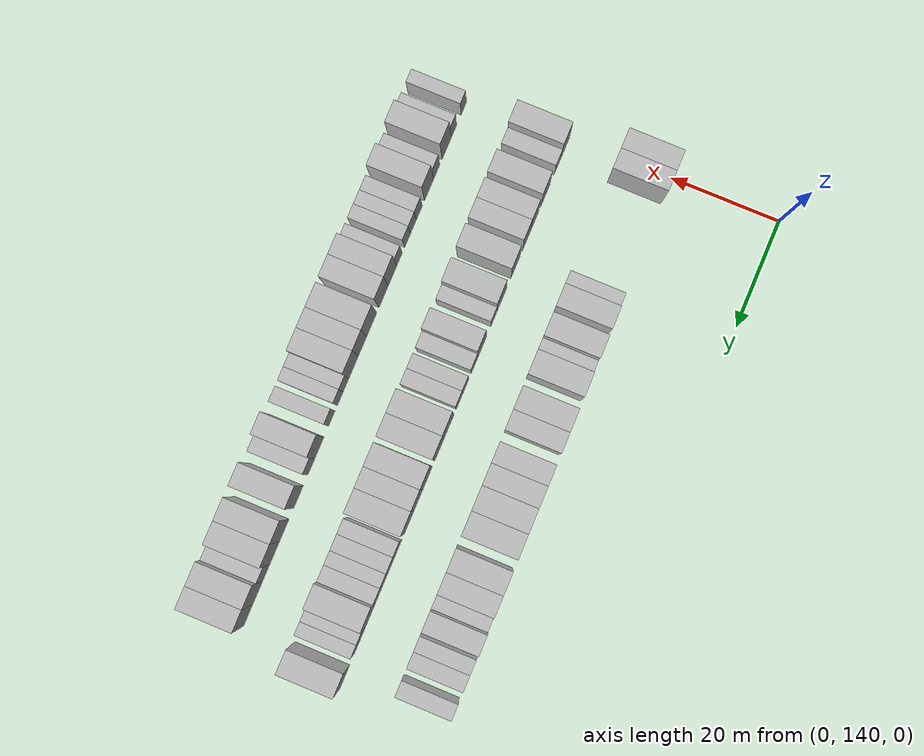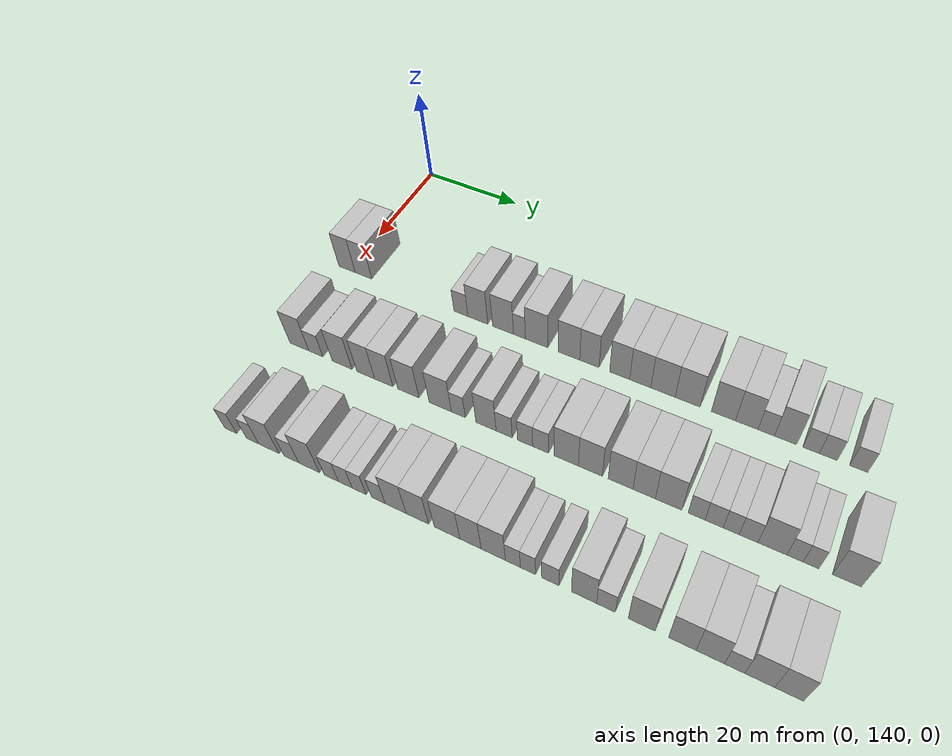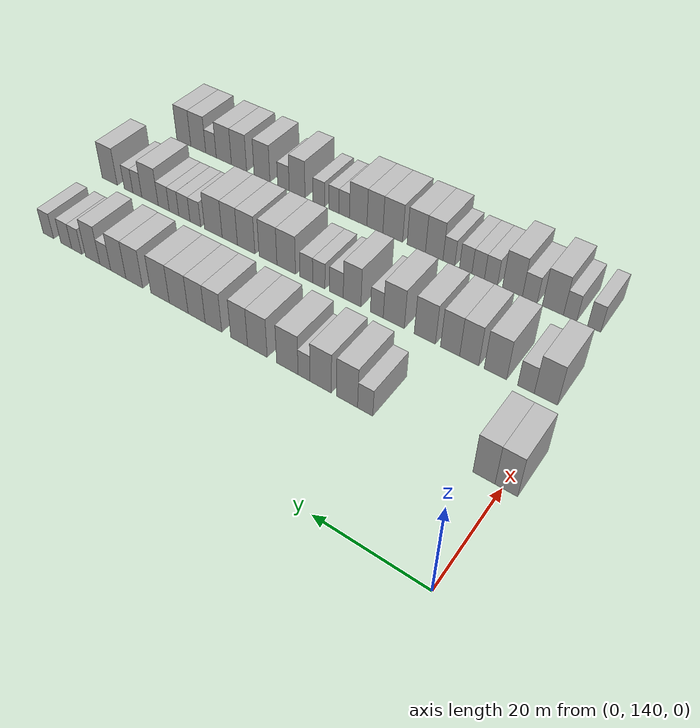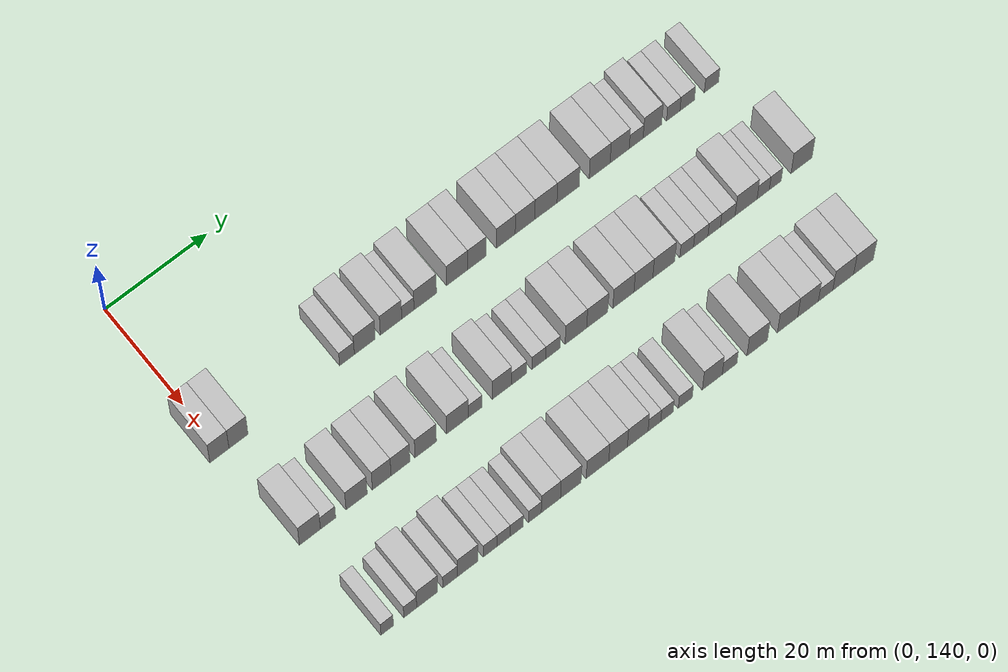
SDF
<sdf version="1.6">
 <world name="default">
  <model name="building_96">
   <static>1</static>
   <pose>25.0000 139.3659 0 0.000000 0.000000 0.000000</pose>
   <link name="link">
    <pose>0 0 4.50 0 0 0</pose>
    <collision name="collision"><geometry><box><size>10.0000 3.7204 9.0000</size></box></geometry></collision>
    <visual name="visual">
     <cast_shadows>0</cast_shadows>
     <geometry><box><size>10.0000 3.7204 9.0000</size></box></geometry>
     <material>
      <script>
       <uri>model://HANNAS_wall/materials/scripts</uri>
       <uri>model://HANNAS_wall/materials/textures</uri>
       <name>vrc/HANNAS_wall</name>
      </script>
     </material>
    </visual>
   </link>
  </model>
  <model name="building_97">
   <static>1</static>
   <pose>25.0000 143.0811 0 0.000000 0.000000 0.000000</pose>
   <link name="link">
    <pose>0 0 4.50 0 0 0</pose>
    <collision name="collision"><geometry><box><size>10.0000 3.7100 9.0000</size></box></geometry></collision>
    <visual name="visual">
     <cast_shadows>0</cast_shadows>
     <geometry><box><size>10.0000 3.7100 9.0000</size></box></geometry>
     <material>
      <script>
       <uri>model://HANNAS_wall/materials/scripts</uri>
       <uri>model://HANNAS_wall/materials/textures</uri>
       <name>vrc/HANNAS_wall</name>
      </script>
     </material>
    </visual>
   </link>
  </model>
  <model name="building_98">
   <static>1</static>
   <pose>25.0000 164.2825 0 0.000000 0.000000 0.000000</pose>
   <link name="link">
    <pose>0 0 3.00 0 0 0</pose>
    <collision name="collision"><geometry><box><size>10.0000 2.8976 6.0000</size></box></geometry></collision>
    <visual name="visual">
     <cast_shadows>0</cast_shadows>
     <geometry><box><size>10.0000 2.8976 6.0000</size></box></geometry>
     <material>
      <script>
       <uri>model://HANNAS_wall/materials/scripts</uri>
       <uri>model://HANNAS_wall/materials/textures</uri>
       <name>vrc/HANNAS_wall</name>
      </script>
     </material>
    </visual>
   </link>
  </model>
  <model name="building_99">
   <static>1</static>
   <pose>25.0000 167.7879 0 0.000000 0.000000 0.000000</pose>
   <link name="link">
    <pose>0 0 4.50 0 0 0</pose>
    <collision name="collision"><geometry><box><size>10.0000 4.1133 9.0000</size></box></geometry></collision>
    <visual name="visual">
     <cast_shadows>0</cast_shadows>
     <geometry><box><size>10.0000 4.1133 9.0000</size></box></geometry>
     <material>
      <script>
       <uri>model://HANNAS_wall/materials/scripts</uri>
       <uri>model://HANNAS_wall/materials/textures</uri>
       <name>vrc/HANNAS_wall</name>
      </script>
     </material>
    </visual>
   </link>
  </model>
  <model name="building_100">
   <static>1</static>
   <pose>25.0000 172.9666 0 0.000000 0.000000 0.000000</pose>
   <link name="link">
    <pose>0 0 4.50 0 0 0</pose>
    <collision name="collision"><geometry><box><size>10.0000 4.2440 9.0000</size></box></geometry></collision>
    <visual name="visual">
     <cast_shadows>0</cast_shadows>
     <geometry><box><size>10.0000 4.2440 9.0000</size></box></geometry>
     <material>
      <script>
       <uri>model://HANNAS_wall/materials/scripts</uri>
       <uri>model://HANNAS_wall/materials/textures</uri>
       <name>vrc/HANNAS_wall</name>
      </script>
     </material>
    </visual>
   </link>
  </model>
  <model name="building_101">
   <static>1</static>
   <pose>25.0000 176.2978 0 0.000000 0.000000 0.000000</pose>
   <link name="link">
    <pose>0 0 3.00 0 0 0</pose>
    <collision name="collision"><geometry><box><size>10.0000 2.4184 6.0000</size></box></geometry></collision>
    <visual name="visual">
     <cast_shadows>0</cast_shadows>
     <geometry><box><size>10.0000 2.4184 6.0000</size></box></geometry>
     <material>
      <script>
       <uri>model://HANNAS_wall/materials/scripts</uri>
       <uri>model://HANNAS_wall/materials/textures</uri>
       <name>vrc/HANNAS_wall</name>
      </script>
     </material>
    </visual>
   </link>
  </model>
  <model name="building_102">
   <static>1</static>
   <pose>25.0000 179.7274 0 0.000000 0.000000 0.000000</pose>
   <link name="link">
    <pose>0 0 4.50 0 0 0</pose>
    <collision name="collision"><geometry><box><size>10.0000 4.4408 9.0000</size></box></geometry></collision>
    <visual name="visual">
     <cast_shadows>0</cast_shadows>
     <geometry><box><size>10.0000 4.4408 9.0000</size></box></geometry>
     <material>
      <script>
       <uri>model://HANNAS_wall/materials/scripts</uri>
       <uri>model://HANNAS_wall/materials/textures</uri>
       <name>vrc/HANNAS_wall</name>
      </script>
     </material>
    </visual>
   </link>
  </model>
  <model name="building_103">
   <static>1</static>
   <pose>25.0000 186.0563 0 0.000000 0.000000 0.000000</pose>
   <link name="link">
    <pose>0 0 4.50 0 0 0</pose>
    <collision name="collision"><geometry><box><size>10.0000 4.2172 9.0000</size></box></geometry></collision>
    <visual name="visual">
     <cast_shadows>0</cast_shadows>
     <geometry><box><size>10.0000 4.2172 9.0000</size></box></geometry>
     <material>
      <script>
       <uri>model://HANNAS_wall/materials/scripts</uri>
       <uri>model://HANNAS_wall/materials/textures</uri>
       <name>vrc/HANNAS_wall</name>
      </script>
     </material>
    </visual>
   </link>
  </model>
  <model name="building_104">
   <static>1</static>
   <pose>25.0000 190.0072 0 0.000000 0.000000 0.000000</pose>
   <link name="link">
    <pose>0 0 4.50 0 0 0</pose>
    <collision name="collision"><geometry><box><size>10.0000 3.6845 9.0000</size></box></geometry></collision>
    <visual name="visual">
     <cast_shadows>0</cast_shadows>
     <geometry><box><size>10.0000 3.6845 9.0000</size></box></geometry>
     <material>
      <script>
       <uri>model://HANNAS_wall/materials/scripts</uri>
       <uri>model://HANNAS_wall/materials/textures</uri>
       <name>vrc/HANNAS_wall</name>
      </script>
     </material>
    </visual>
   </link>
  </model>
  <model name="building_105">
   <static>1</static>
   <pose>25.0000 195.7263 0 0.000000 0.000000 0.000000</pose>
   <link name="link">
    <pose>0 0 4.50 0 0 0</pose>
    <collision name="collision"><geometry><box><size>10.0000 3.7537 9.0000</size></box></geometry></collision>
    <visual name="visual">
     <cast_shadows>0</cast_shadows>
     <geometry><box><size>10.0000 3.7537 9.0000</size></box></geometry>
     <material>
      <script>
       <uri>model://HANNAS_wall/materials/scripts</uri>
       <uri>model://HANNAS_wall/materials/textures</uri>
       <name>vrc/HANNAS_wall</name>
      </script>
     </material>
    </visual>
   </link>
  </model>
  <model name="building_106">
   <static>1</static>
   <pose>25.0000 199.5584 0 0.000000 0.000000 0.000000</pose>
   <link name="link">
    <pose>0 0 4.50 0 0 0</pose>
    <collision name="collision"><geometry><box><size>10.0000 3.9105 9.0000</size></box></geometry></collision>
    <visual name="visual">
     <cast_shadows>0</cast_shadows>
     <geometry><box><size>10.0000 3.9105 9.0000</size></box></geometry>
     <material>
      <script>
       <uri>model://HANNAS_wall/materials/scripts</uri>
       <uri>model://HANNAS_wall/materials/textures</uri>
       <name>vrc/HANNAS_wall</name>
      </script>
     </material>
    </visual>
   </link>
  </model>
  <model name="building_107">
   <static>1</static>
   <pose>25.0000 203.7398 0 0.000000 0.000000 0.000000</pose>
   <link name="link">
    <pose>0 0 4.50 0 0 0</pose>
    <collision name="collision"><geometry><box><size>10.0000 4.4525 9.0000</size></box></geometry></collision>
    <visual name="visual">
     <cast_shadows>0</cast_shadows>
     <geometry><box><size>10.0000 4.4525 9.0000</size></box></geometry>
     <material>
      <script>
       <uri>model://HANNAS_wall/materials/scripts</uri>
       <uri>model://HANNAS_wall/materials/textures</uri>
       <name>vrc/HANNAS_wall</name>
      </script>
     </material>
    </visual>
   </link>
  </model>
  <model name="building_108">
   <static>1</static>
   <pose>25.0000 208.1927 0 0.000000 0.000000 0.000000</pose>
   <link name="link">
    <pose>0 0 4.50 0 0 0</pose>
    <collision name="collision"><geometry><box><size>10.0000 4.4531 9.0000</size></box></geometry></collision>
    <visual name="visual">
     <cast_shadows>0</cast_shadows>
     <geometry><box><size>10.0000 4.4531 9.0000</size></box></geometry>
     <material>
      <script>
       <uri>model://HANNAS_wall/materials/scripts</uri>
       <uri>model://HANNAS_wall/materials/textures</uri>
       <name>vrc/HANNAS_wall</name>
      </script>
     </material>
    </visual>
   </link>
  </model>
  <model name="building_109">
   <static>1</static>
   <pose>25.0000 214.5232 0 0.000000 0.000000 0.000000</pose>
   <link name="link">
    <pose>0 0 4.50 0 0 0</pose>
    <collision name="collision"><geometry><box><size>10.0000 4.2079 9.0000</size></box></geometry></collision>
    <visual name="visual">
     <cast_shadows>0</cast_shadows>
     <geometry><box><size>10.0000 4.2079 9.0000</size></box></geometry>
     <material>
      <script>
       <uri>model://HANNAS_wall/materials/scripts</uri>
       <uri>model://HANNAS_wall/materials/textures</uri>
       <name>vrc/HANNAS_wall</name>
      </script>
     </material>
    </visual>
   </link>
  </model>
  <model name="building_110">
   <static>1</static>
   <pose>25.0000 218.5569 0 0.000000 0.000000 0.000000</pose>
   <link name="link">
    <pose>0 0 4.50 0 0 0</pose>
    <collision name="collision"><geometry><box><size>10.0000 3.8597 9.0000</size></box></geometry></collision>
    <visual name="visual">
     <cast_shadows>0</cast_shadows>
     <geometry><box><size>10.0000 3.8597 9.0000</size></box></geometry>
     <material>
      <script>
       <uri>model://HANNAS_wall/materials/scripts</uri>
       <uri>model://HANNAS_wall/materials/textures</uri>
       <name>vrc/HANNAS_wall</name>
      </script>
     </material>
    </visual>
   </link>
  </model>
  <model name="building_111">
   <static>1</static>
   <pose>25.0000 221.8860 0 0.000000 0.000000 0.000000</pose>
   <link name="link">
    <pose>0 0 3.00 0 0 0</pose>
    <collision name="collision"><geometry><box><size>10.0000 2.7984 6.0000</size></box></geometry></collision>
    <visual name="visual">
     <cast_shadows>0</cast_shadows>
     <geometry><box><size>10.0000 2.7984 6.0000</size></box></geometry>
     <material>
      <script>
       <uri>model://HANNAS_wall/materials/scripts</uri>
       <uri>model://HANNAS_wall/materials/textures</uri>
       <name>vrc/HANNAS_wall</name>
      </script>
     </material>
    </visual>
   </link>
  </model>
  <model name="building_112">
   <static>1</static>
   <pose>25.0000 225.1602 0 0.000000 0.000000 0.000000</pose>
   <link name="link">
    <pose>0 0 4.50 0 0 0</pose>
    <collision name="collision"><geometry><box><size>10.0000 3.7499 9.0000</size></box></geometry></collision>
    <visual name="visual">
     <cast_shadows>0</cast_shadows>
     <geometry><box><size>10.0000 3.7499 9.0000</size></box></geometry>
     <material>
      <script>
       <uri>model://HANNAS_wall/materials/scripts</uri>
       <uri>model://HANNAS_wall/materials/textures</uri>
       <name>vrc/HANNAS_wall</name>
      </script>
     </material>
    </visual>
   </link>
  </model>
  <model name="building_113">
   <static>1</static>
   <pose>25.0000 229.3922 0 0.000000 0.000000 0.000000</pose>
   <link name="link">
    <pose>0 0 3.00 0 0 0</pose>
    <collision name="collision"><geometry><box><size>10.0000 2.7141 6.0000</size></box></geometry></collision>
    <visual name="visual">
     <cast_shadows>0</cast_shadows>
     <geometry><box><size>10.0000 2.7141 6.0000</size></box></geometry>
     <material>
      <script>
       <uri>model://HANNAS_wall/materials/scripts</uri>
       <uri>model://HANNAS_wall/materials/textures</uri>
       <name>vrc/HANNAS_wall</name>
      </script>
     </material>
    </visual>
   </link>
  </model>
  <model name="building_114">
   <static>1</static>
   <pose>25.0000 232.2271 0 0.000000 0.000000 0.000000</pose>
   <link name="link">
    <pose>0 0 3.00 0 0 0</pose>
    <collision name="collision"><geometry><box><size>10.0000 2.9558 6.0000</size></box></geometry></collision>
    <visual name="visual">
     <cast_shadows>0</cast_shadows>
     <geometry><box><size>10.0000 2.9558 6.0000</size></box></geometry>
     <material>
      <script>
       <uri>model://HANNAS_wall/materials/scripts</uri>
       <uri>model://HANNAS_wall/materials/textures</uri>
       <name>vrc/HANNAS_wall</name>
      </script>
     </material>
    </visual>
   </link>
  </model>
  <model name="building_115">
   <static>1</static>
   <pose>25.0000 237.1587 0 0.000000 0.000000 0.000000</pose>
   <link name="link">
    <pose>0 0 3.00 0 0 0</pose>
    <collision name="collision"><geometry><box><size>10.0000 2.9074 6.0000</size></box></geometry></collision>
    <visual name="visual">
     <cast_shadows>0</cast_shadows>
     <geometry><box><size>10.0000 2.9074 6.0000</size></box></geometry>
     <material>
      <script>
       <uri>model://HANNAS_wall/materials/scripts</uri>
       <uri>model://HANNAS_wall/materials/textures</uri>
       <name>vrc/HANNAS_wall</name>
      </script>
     </material>
    </visual>
   </link>
  </model>
  <model name="building_213">
   <static>1</static>
   <pose>44.0000 142.2587 0 0.000000 0.000000 0.000000</pose>
   <link name="link">
    <pose>0 0 4.50 0 0 0</pose>
    <collision name="collision"><geometry><box><size>10.0000 4.0857 9.0000</size></box></geometry></collision>
    <visual name="visual">
     <cast_shadows>0</cast_shadows>
     <geometry><box><size>10.0000 4.0857 9.0000</size></box></geometry>
     <material>
      <script>
       <uri>model://HANNAS_wall/materials/scripts</uri>
       <uri>model://HANNAS_wall/materials/textures</uri>
       <name>vrc/HANNAS_wall</name>
      </script>
     </material>
    </visual>
   </link>
  </model>
  <model name="building_214">
   <static>1</static>
   <pose>44.0000 145.7861 0 0.000000 0.000000 0.000000</pose>
   <link name="link">
    <pose>0 0 3.00 0 0 0</pose>
    <collision name="collision"><geometry><box><size>10.0000 2.9692 6.0000</size></box></geometry></collision>
    <visual name="visual">
     <cast_shadows>0</cast_shadows>
     <geometry><box><size>10.0000 2.9692 6.0000</size></box></geometry>
     <material>
      <script>
       <uri>model://HANNAS_wall/materials/scripts</uri>
       <uri>model://HANNAS_wall/materials/textures</uri>
       <name>vrc/HANNAS_wall</name>
      </script>
     </material>
    </visual>
   </link>
  </model>
  <model name="building_215">
   <static>1</static>
   <pose>44.0000 151.3429 0 0.000000 0.000000 0.000000</pose>
   <link name="link">
    <pose>0 0 4.50 0 0 0</pose>
    <collision name="collision"><geometry><box><size>10.0000 4.1444 9.0000</size></box></geometry></collision>
    <visual name="visual">
     <cast_shadows>0</cast_shadows>
     <geometry><box><size>10.0000 4.1444 9.0000</size></box></geometry>
     <material>
      <script>
       <uri>model://HANNAS_wall/materials/scripts</uri>
       <uri>model://HANNAS_wall/materials/textures</uri>
       <name>vrc/HANNAS_wall</name>
      </script>
     </material>
    </visual>
   </link>
  </model>
  <model name="building_216">
   <static>1</static>
   <pose>44.0000 156.2304 0 0.000000 0.000000 0.000000</pose>
   <link name="link">
    <pose>0 0 4.50 0 0 0</pose>
    <collision name="collision"><geometry><box><size>10.0000 3.6306 9.0000</size></box></geometry></collision>
    <visual name="visual">
     <cast_shadows>0</cast_shadows>
     <geometry><box><size>10.0000 3.6306 9.0000</size></box></geometry>
     <material>
      <script>
       <uri>model://HANNAS_wall/materials/scripts</uri>
       <uri>model://HANNAS_wall/materials/textures</uri>
       <name>vrc/HANNAS_wall</name>
      </script>
     </material>
    </visual>
   </link>
  </model>
  <model name="building_217">
   <static>1</static>
   <pose>44.0000 159.8955 0 0.000000 0.000000 0.000000</pose>
   <link name="link">
    <pose>0 0 4.50 0 0 0</pose>
    <collision name="collision"><geometry><box><size>10.0000 3.6997 9.0000</size></box></geometry></collision>
    <visual name="visual">
     <cast_shadows>0</cast_shadows>
     <geometry><box><size>10.0000 3.6997 9.0000</size></box></geometry>
     <material>
      <script>
       <uri>model://HANNAS_wall/materials/scripts</uri>
       <uri>model://HANNAS_wall/materials/textures</uri>
       <name>vrc/HANNAS_wall</name>
      </script>
     </material>
    </visual>
   </link>
  </model>
  <model name="building_218">
   <static>1</static>
   <pose>44.0000 164.8458 0 0.000000 0.000000 0.000000</pose>
   <link name="link">
    <pose>0 0 4.50 0 0 0</pose>
    <collision name="collision"><geometry><box><size>10.0000 4.2008 9.0000</size></box></geometry></collision>
    <visual name="visual">
     <cast_shadows>0</cast_shadows>
     <geometry><box><size>10.0000 4.2008 9.0000</size></box></geometry>
     <material>
      <script>
       <uri>model://HANNAS_wall/materials/scripts</uri>
       <uri>model://HANNAS_wall/materials/textures</uri>
       <name>vrc/HANNAS_wall</name>
      </script>
     </material>
    </visual>
   </link>
  </model>
  <model name="building_219">
   <static>1</static>
   <pose>44.0000 171.1092 0 0.000000 0.000000 0.000000</pose>
   <link name="link">
    <pose>0 0 4.50 0 0 0</pose>
    <collision name="collision"><geometry><box><size>10.0000 4.3261 9.0000</size></box></geometry></collision>
    <visual name="visual">
     <cast_shadows>0</cast_shadows>
     <geometry><box><size>10.0000 4.3261 9.0000</size></box></geometry>
     <material>
      <script>
       <uri>model://HANNAS_wall/materials/scripts</uri>
       <uri>model://HANNAS_wall/materials/textures</uri>
       <name>vrc/HANNAS_wall</name>
      </script>
     </material>
    </visual>
   </link>
  </model>
  <model name="building_220">
   <static>1</static>
   <pose>44.0000 174.6132 0 0.000000 0.000000 0.000000</pose>
   <link name="link">
    <pose>0 0 3.00 0 0 0</pose>
    <collision name="collision"><geometry><box><size>10.0000 2.6818 6.0000</size></box></geometry></collision>
    <visual name="visual">
     <cast_shadows>0</cast_shadows>
     <geometry><box><size>10.0000 2.6818 6.0000</size></box></geometry>
     <material>
      <script>
       <uri>model://HANNAS_wall/materials/scripts</uri>
       <uri>model://HANNAS_wall/materials/textures</uri>
       <name>vrc/HANNAS_wall</name>
      </script>
     </material>
    </visual>
   </link>
  </model>
  <model name="building_221">
   <static>1</static>
   <pose>44.0000 179.8510 0 0.000000 0.000000 0.000000</pose>
   <link name="link">
    <pose>0 0 4.50 0 0 0</pose>
    <collision name="collision"><geometry><box><size>10.0000 3.7938 9.0000</size></box></geometry></collision>
    <visual name="visual">
     <cast_shadows>0</cast_shadows>
     <geometry><box><size>10.0000 3.7938 9.0000</size></box></geometry>
     <material>
      <script>
       <uri>model://HANNAS_wall/materials/scripts</uri>
       <uri>model://HANNAS_wall/materials/textures</uri>
       <name>vrc/HANNAS_wall</name>
      </script>
     </material>
    </visual>
   </link>
  </model>
  <model name="building_222">
   <static>1</static>
   <pose>44.0000 183.2450 0 0.000000 0.000000 0.000000</pose>
   <link name="link">
    <pose>0 0 3.00 0 0 0</pose>
    <collision name="collision"><geometry><box><size>10.0000 2.9941 6.0000</size></box></geometry></collision>
    <visual name="visual">
     <cast_shadows>0</cast_shadows>
     <geometry><box><size>10.0000 2.9941 6.0000</size></box></geometry>
     <material>
      <script>
       <uri>model://HANNAS_wall/materials/scripts</uri>
       <uri>model://HANNAS_wall/materials/textures</uri>
       <name>vrc/HANNAS_wall</name>
      </script>
     </material>
    </visual>
   </link>
  </model>
  <model name="building_223">
   <static>1</static>
   <pose>44.0000 187.1088 0 0.000000 0.000000 0.000000</pose>
   <link name="link">
    <pose>0 0 3.00 0 0 0</pose>
    <collision name="collision"><geometry><box><size>10.0000 2.7335 6.0000</size></box></geometry></collision>
    <visual name="visual">
     <cast_shadows>0</cast_shadows>
     <geometry><box><size>10.0000 2.7335 6.0000</size></box></geometry>
     <material>
      <script>
       <uri>model://HANNAS_wall/materials/scripts</uri>
       <uri>model://HANNAS_wall/materials/textures</uri>
       <name>vrc/HANNAS_wall</name>
      </script>
     </material>
    </visual>
   </link>
  </model>
  <model name="building_224">
   <static>1</static>
   <pose>44.0000 189.9155 0 0.000000 0.000000 0.000000</pose>
   <link name="link">
    <pose>0 0 3.00 0 0 0</pose>
    <collision name="collision"><geometry><box><size>10.0000 2.8799 6.0000</size></box></geometry></collision>
    <visual name="visual">
     <cast_shadows>0</cast_shadows>
     <geometry><box><size>10.0000 2.8799 6.0000</size></box></geometry>
     <material>
      <script>
       <uri>model://HANNAS_wall/materials/scripts</uri>
       <uri>model://HANNAS_wall/materials/textures</uri>
       <name>vrc/HANNAS_wall</name>
      </script>
     </material>
    </visual>
   </link>
  </model>
  <model name="building_225">
   <static>1</static>
   <pose>44.0000 194.5057 0 0.000000 0.000000 0.000000</pose>
   <link name="link">
    <pose>0 0 4.50 0 0 0</pose>
    <collision name="collision"><geometry><box><size>10.0000 4.3005 9.0000</size></box></geometry></collision>
    <visual name="visual">
     <cast_shadows>0</cast_shadows>
     <geometry><box><size>10.0000 4.3005 9.0000</size></box></geometry>
     <material>
      <script>
       <uri>model://HANNAS_wall/materials/scripts</uri>
       <uri>model://HANNAS_wall/materials/textures</uri>
       <name>vrc/HANNAS_wall</name>
      </script>
     </material>
    </visual>
   </link>
  </model>
  <model name="building_226">
   <static>1</static>
   <pose>44.0000 198.7559 0 0.000000 0.000000 0.000000</pose>
   <link name="link">
    <pose>0 0 4.50 0 0 0</pose>
    <collision name="collision"><geometry><box><size>10.0000 4.1998 9.0000</size></box></geometry></collision>
    <visual name="visual">
     <cast_shadows>0</cast_shadows>
     <geometry><box><size>10.0000 4.1998 9.0000</size></box></geometry>
     <material>
      <script>
       <uri>model://HANNAS_wall/materials/scripts</uri>
       <uri>model://HANNAS_wall/materials/textures</uri>
       <name>vrc/HANNAS_wall</name>
      </script>
     </material>
    </visual>
   </link>
  </model>
  <model name="building_227">
   <static>1</static>
   <pose>44.0000 203.9703 0 0.000000 0.000000 0.000000</pose>
   <link name="link">
    <pose>0 0 4.50 0 0 0</pose>
    <collision name="collision"><geometry><box><size>10.0000 4.2291 9.0000</size></box></geometry></collision>
    <visual name="visual">
     <cast_shadows>0</cast_shadows>
     <geometry><box><size>10.0000 4.2291 9.0000</size></box></geometry>
     <material>
      <script>
       <uri>model://HANNAS_wall/materials/scripts</uri>
       <uri>model://HANNAS_wall/materials/textures</uri>
       <name>vrc/HANNAS_wall</name>
      </script>
     </material>
    </visual>
   </link>
  </model>
  <model name="building_228">
   <static>1</static>
   <pose>44.0000 207.9721 0 0.000000 0.000000 0.000000</pose>
   <link name="link">
    <pose>0 0 4.50 0 0 0</pose>
    <collision name="collision"><geometry><box><size>10.0000 3.7744 9.0000</size></box></geometry></collision>
    <visual name="visual">
     <cast_shadows>0</cast_shadows>
     <geometry><box><size>10.0000 3.7744 9.0000</size></box></geometry>
     <material>
      <script>
       <uri>model://HANNAS_wall/materials/scripts</uri>
       <uri>model://HANNAS_wall/materials/textures</uri>
       <name>vrc/HANNAS_wall</name>
      </script>
     </material>
    </visual>
   </link>
  </model>
  <model name="building_229">
   <static>1</static>
   <pose>44.0000 212.0667 0 0.000000 0.000000 0.000000</pose>
   <link name="link">
    <pose>0 0 4.50 0 0 0</pose>
    <collision name="collision"><geometry><box><size>10.0000 4.4148 9.0000</size></box></geometry></collision>
    <visual name="visual">
     <cast_shadows>0</cast_shadows>
     <geometry><box><size>10.0000 4.4148 9.0000</size></box></geometry>
     <material>
      <script>
       <uri>model://HANNAS_wall/materials/scripts</uri>
       <uri>model://HANNAS_wall/materials/textures</uri>
       <name>vrc/HANNAS_wall</name>
      </script>
     </material>
    </visual>
   </link>
  </model>
  <model name="building_230">
   <static>1</static>
   <pose>44.0000 216.6482 0 0.000000 0.000000 0.000000</pose>
   <link name="link">
    <pose>0 0 3.00 0 0 0</pose>
    <collision name="collision"><geometry><box><size>10.0000 2.7481 6.0000</size></box></geometry></collision>
    <visual name="visual">
     <cast_shadows>0</cast_shadows>
     <geometry><box><size>10.0000 2.7481 6.0000</size></box></geometry>
     <material>
      <script>
       <uri>model://HANNAS_wall/materials/scripts</uri>
       <uri>model://HANNAS_wall/materials/textures</uri>
       <name>vrc/HANNAS_wall</name>
      </script>
     </material>
    </visual>
   </link>
  </model>
  <model name="building_231">
   <static>1</static>
   <pose>44.0000 219.4779 0 0.000000 0.000000 0.000000</pose>
   <link name="link">
    <pose>0 0 3.00 0 0 0</pose>
    <collision name="collision"><geometry><box><size>10.0000 2.9113 6.0000</size></box></geometry></collision>
    <visual name="visual">
     <cast_shadows>0</cast_shadows>
     <geometry><box><size>10.0000 2.9113 6.0000</size></box></geometry>
     <material>
      <script>
       <uri>model://HANNAS_wall/materials/scripts</uri>
       <uri>model://HANNAS_wall/materials/textures</uri>
       <name>vrc/HANNAS_wall</name>
      </script>
     </material>
    </visual>
   </link>
  </model>
  <model name="building_232">
   <static>1</static>
   <pose>44.0000 222.1958 0 0.000000 0.000000 0.000000</pose>
   <link name="link">
    <pose>0 0 3.00 0 0 0</pose>
    <collision name="collision"><geometry><box><size>10.0000 2.5244 6.0000</size></box></geometry></collision>
    <visual name="visual">
     <cast_shadows>0</cast_shadows>
     <geometry><box><size>10.0000 2.5244 6.0000</size></box></geometry>
     <material>
      <script>
       <uri>model://HANNAS_wall/materials/scripts</uri>
       <uri>model://HANNAS_wall/materials/textures</uri>
       <name>vrc/HANNAS_wall</name>
      </script>
     </material>
    </visual>
   </link>
  </model>
  <model name="building_233">
   <static>1</static>
   <pose>44.0000 224.9395 0 0.000000 0.000000 0.000000</pose>
   <link name="link">
    <pose>0 0 3.00 0 0 0</pose>
    <collision name="collision"><geometry><box><size>10.0000 2.9630 6.0000</size></box></geometry></collision>
    <visual name="visual">
     <cast_shadows>0</cast_shadows>
     <geometry><box><size>10.0000 2.9630 6.0000</size></box></geometry>
     <material>
      <script>
       <uri>model://HANNAS_wall/materials/scripts</uri>
       <uri>model://HANNAS_wall/materials/textures</uri>
       <name>vrc/HANNAS_wall</name>
      </script>
     </material>
    </visual>
   </link>
  </model>
  <model name="building_234">
   <static>1</static>
   <pose>44.0000 228.6480 0 0.000000 0.000000 0.000000</pose>
   <link name="link">
    <pose>0 0 4.50 0 0 0</pose>
    <collision name="collision"><geometry><box><size>10.0000 4.4540 9.0000</size></box></geometry></collision>
    <visual name="visual">
     <cast_shadows>0</cast_shadows>
     <geometry><box><size>10.0000 4.4540 9.0000</size></box></geometry>
     <material>
      <script>
       <uri>model://HANNAS_wall/materials/scripts</uri>
       <uri>model://HANNAS_wall/materials/textures</uri>
       <name>vrc/HANNAS_wall</name>
      </script>
     </material>
    </visual>
   </link>
  </model>
  <model name="building_235">
   <static>1</static>
   <pose>44.0000 232.1119 0 0.000000 0.000000 0.000000</pose>
   <link name="link">
    <pose>0 0 3.00 0 0 0</pose>
    <collision name="collision"><geometry><box><size>10.0000 2.4738 6.0000</size></box></geometry></collision>
    <visual name="visual">
     <cast_shadows>0</cast_shadows>
     <geometry><box><size>10.0000 2.4738 6.0000</size></box></geometry>
     <material>
      <script>
       <uri>model://HANNAS_wall/materials/scripts</uri>
       <uri>model://HANNAS_wall/materials/textures</uri>
       <name>vrc/HANNAS_wall</name>
      </script>
     </material>
    </visual>
   </link>
  </model>
  <model name="building_236">
   <static>1</static>
   <pose>44.0000 234.5515 0 0.000000 0.000000 0.000000</pose>
   <link name="link">
    <pose>0 0 3.00 0 0 0</pose>
    <collision name="collision"><geometry><box><size>10.0000 2.4056 6.0000</size></box></geometry></collision>
    <visual name="visual">
     <cast_shadows>0</cast_shadows>
     <geometry><box><size>10.0000 2.4056 6.0000</size></box></geometry>
     <material>
      <script>
       <uri>model://HANNAS_wall/materials/scripts</uri>
       <uri>model://HANNAS_wall/materials/textures</uri>
       <name>vrc/HANNAS_wall</name>
      </script>
     </material>
    </visual>
   </link>
  </model>
  <model name="building_237">
   <static>1</static>
   <pose>44.0000 239.8992 0 0.000000 0.000000 0.000000</pose>
   <link name="link">
    <pose>0 0 4.50 0 0 0</pose>
    <collision name="collision"><geometry><box><size>10.0000 4.2897 9.0000</size></box></geometry></collision>
    <visual name="visual">
     <cast_shadows>0</cast_shadows>
     <geometry><box><size>10.0000 4.2897 9.0000</size></box></geometry>
     <material>
      <script>
       <uri>model://HANNAS_wall/materials/scripts</uri>
       <uri>model://HANNAS_wall/materials/textures</uri>
       <name>vrc/HANNAS_wall</name>
      </script>
     </material>
    </visual>
   </link>
  </model>
  <model name="building_328">
   <static>1</static>
   <pose>63.0000 142.4085 0 0.000000 0.000000 0.000000</pose>
   <link name="link">
    <pose>0 0 3.00 0 0 0</pose>
    <collision name="collision"><geometry><box><size>10.0000 2.4311 6.0000</size></box></geometry></collision>
    <visual name="visual">
     <cast_shadows>0</cast_shadows>
     <geometry><box><size>10.0000 2.4311 6.0000</size></box></geometry>
     <material>
      <script>
       <uri>model://HANNAS_wall/materials/scripts</uri>
       <uri>model://HANNAS_wall/materials/textures</uri>
       <name>vrc/HANNAS_wall</name>
      </script>
     </material>
    </visual>
   </link>
  </model>
  <model name="building_329">
   <static>1</static>
   <pose>63.0000 146.8783 0 0.000000 0.000000 0.000000</pose>
   <link name="link">
    <pose>0 0 3.00 0 0 0</pose>
    <collision name="collision"><geometry><box><size>10.0000 2.5084 6.0000</size></box></geometry></collision>
    <visual name="visual">
     <cast_shadows>0</cast_shadows>
     <geometry><box><size>10.0000 2.5084 6.0000</size></box></geometry>
     <material>
      <script>
       <uri>model://HANNAS_wall/materials/scripts</uri>
       <uri>model://HANNAS_wall/materials/textures</uri>
       <name>vrc/HANNAS_wall</name>
      </script>
     </material>
    </visual>
   </link>
  </model>
  <model name="building_330">
   <static>1</static>
   <pose>63.0000 150.1618 0 0.000000 0.000000 0.000000</pose>
   <link name="link">
    <pose>0 0 4.50 0 0 0</pose>
    <collision name="collision"><geometry><box><size>10.0000 4.0586 9.0000</size></box></geometry></collision>
    <visual name="visual">
     <cast_shadows>0</cast_shadows>
     <geometry><box><size>10.0000 4.0586 9.0000</size></box></geometry>
     <material>
      <script>
       <uri>model://HANNAS_wall/materials/scripts</uri>
       <uri>model://HANNAS_wall/materials/textures</uri>
       <name>vrc/HANNAS_wall</name>
      </script>
     </material>
    </visual>
   </link>
  </model>
  <model name="building_331">
   <static>1</static>
   <pose>63.0000 154.6353 0 0.000000 0.000000 0.000000</pose>
   <link name="link">
    <pose>0 0 3.00 0 0 0</pose>
    <collision name="collision"><geometry><box><size>10.0000 2.8884 6.0000</size></box></geometry></collision>
    <visual name="visual">
     <cast_shadows>0</cast_shadows>
     <geometry><box><size>10.0000 2.8884 6.0000</size></box></geometry>
     <material>
      <script>
       <uri>model://HANNAS_wall/materials/scripts</uri>
       <uri>model://HANNAS_wall/materials/textures</uri>
       <name>vrc/HANNAS_wall</name>
      </script>
     </material>
    </visual>
   </link>
  </model>
  <model name="building_332">
   <static>1</static>
   <pose>63.0000 158.0744 0 0.000000 0.000000 0.000000</pose>
   <link name="link">
    <pose>0 0 4.50 0 0 0</pose>
    <collision name="collision"><geometry><box><size>10.0000 3.9897 9.0000</size></box></geometry></collision>
    <visual name="visual">
     <cast_shadows>0</cast_shadows>
     <geometry><box><size>10.0000 3.9897 9.0000</size></box></geometry>
     <material>
      <script>
       <uri>model://HANNAS_wall/materials/scripts</uri>
       <uri>model://HANNAS_wall/materials/textures</uri>
       <name>vrc/HANNAS_wall</name>
      </script>
     </material>
    </visual>
   </link>
  </model>
  <model name="building_333">
   <static>1</static>
   <pose>63.0000 162.4039 0 0.000000 0.000000 0.000000</pose>
   <link name="link">
    <pose>0 0 3.00 0 0 0</pose>
    <collision name="collision"><geometry><box><size>10.0000 2.6693 6.0000</size></box></geometry></collision>
    <visual name="visual">
     <cast_shadows>0</cast_shadows>
     <geometry><box><size>10.0000 2.6693 6.0000</size></box></geometry>
     <material>
      <script>
       <uri>model://HANNAS_wall/materials/scripts</uri>
       <uri>model://HANNAS_wall/materials/textures</uri>
       <name>vrc/HANNAS_wall</name>
      </script>
     </material>
    </visual>
   </link>
  </model>
  <model name="building_334">
   <static>1</static>
   <pose>63.0000 165.0365 0 0.000000 0.000000 0.000000</pose>
   <link name="link">
    <pose>0 0 3.00 0 0 0</pose>
    <collision name="collision"><geometry><box><size>10.0000 2.5960 6.0000</size></box></geometry></collision>
    <visual name="visual">
     <cast_shadows>0</cast_shadows>
     <geometry><box><size>10.0000 2.5960 6.0000</size></box></geometry>
     <material>
      <script>
       <uri>model://HANNAS_wall/materials/scripts</uri>
       <uri>model://HANNAS_wall/materials/textures</uri>
       <name>vrc/HANNAS_wall</name>
      </script>
     </material>
    </visual>
   </link>
  </model>
  <model name="building_335">
   <static>1</static>
   <pose>63.0000 167.6328 0 0.000000 0.000000 0.000000</pose>
   <link name="link">
    <pose>0 0 3.00 0 0 0</pose>
    <collision name="collision"><geometry><box><size>10.0000 2.5965 6.0000</size></box></geometry></collision>
    <visual name="visual">
     <cast_shadows>0</cast_shadows>
     <geometry><box><size>10.0000 2.5965 6.0000</size></box></geometry>
     <material>
      <script>
       <uri>model://HANNAS_wall/materials/scripts</uri>
       <uri>model://HANNAS_wall/materials/textures</uri>
       <name>vrc/HANNAS_wall</name>
      </script>
     </material>
    </visual>
   </link>
  </model>
  <model name="building_336">
   <static>1</static>
   <pose>63.0000 171.1869 0 0.000000 0.000000 0.000000</pose>
   <link name="link">
    <pose>0 0 3.00 0 0 0</pose>
    <collision name="collision"><geometry><box><size>10.0000 2.5119 6.0000</size></box></geometry></collision>
    <visual name="visual">
     <cast_shadows>0</cast_shadows>
     <geometry><box><size>10.0000 2.5119 6.0000</size></box></geometry>
     <material>
      <script>
       <uri>model://HANNAS_wall/materials/scripts</uri>
       <uri>model://HANNAS_wall/materials/textures</uri>
       <name>vrc/HANNAS_wall</name>
      </script>
     </material>
    </visual>
   </link>
  </model>
  <model name="building_337">
   <static>1</static>
   <pose>63.0000 174.3377 0 0.000000 0.000000 0.000000</pose>
   <link name="link">
    <pose>0 0 4.50 0 0 0</pose>
    <collision name="collision"><geometry><box><size>10.0000 3.7897 9.0000</size></box></geometry></collision>
    <visual name="visual">
     <cast_shadows>0</cast_shadows>
     <geometry><box><size>10.0000 3.7897 9.0000</size></box></geometry>
     <material>
      <script>
       <uri>model://HANNAS_wall/materials/scripts</uri>
       <uri>model://HANNAS_wall/materials/textures</uri>
       <name>vrc/HANNAS_wall</name>
      </script>
     </material>
    </visual>
   </link>
  </model>
  <model name="building_338">
   <static>1</static>
   <pose>63.0000 178.2519 0 0.000000 0.000000 0.000000</pose>
   <link name="link">
    <pose>0 0 4.50 0 0 0</pose>
    <collision name="collision"><geometry><box><size>10.0000 4.0386 9.0000</size></box></geometry></collision>
    <visual name="visual">
     <cast_shadows>0</cast_shadows>
     <geometry><box><size>10.0000 4.0386 9.0000</size></box></geometry>
     <material>
      <script>
       <uri>model://HANNAS_wall/materials/scripts</uri>
       <uri>model://HANNAS_wall/materials/textures</uri>
       <name>vrc/HANNAS_wall</name>
      </script>
     </material>
    </visual>
   </link>
  </model>
  <model name="building_339">
   <static>1</static>
   <pose>63.0000 183.5032 0 0.000000 0.000000 0.000000</pose>
   <link name="link">
    <pose>0 0 4.50 0 0 0</pose>
    <collision name="collision"><geometry><box><size>10.0000 4.4641 9.0000</size></box></geometry></collision>
    <visual name="visual">
     <cast_shadows>0</cast_shadows>
     <geometry><box><size>10.0000 4.4641 9.0000</size></box></geometry>
     <material>
      <script>
       <uri>model://HANNAS_wall/materials/scripts</uri>
       <uri>model://HANNAS_wall/materials/textures</uri>
       <name>vrc/HANNAS_wall</name>
      </script>
     </material>
    </visual>
   </link>
  </model>
  <model name="building_340">
   <static>1</static>
   <pose>63.0000 187.5724 0 0.000000 0.000000 0.000000</pose>
   <link name="link">
    <pose>0 0 4.50 0 0 0</pose>
    <collision name="collision"><geometry><box><size>10.0000 3.6744 9.0000</size></box></geometry></collision>
    <visual name="visual">
     <cast_shadows>0</cast_shadows>
     <geometry><box><size>10.0000 3.6744 9.0000</size></box></geometry>
     <material>
      <script>
       <uri>model://HANNAS_wall/materials/scripts</uri>
       <uri>model://HANNAS_wall/materials/textures</uri>
       <name>vrc/HANNAS_wall</name>
      </script>
     </material>
    </visual>
   </link>
  </model>
  <model name="building_341">
   <static>1</static>
   <pose>63.0000 191.4685 0 0.000000 0.000000 0.000000</pose>
   <link name="link">
    <pose>0 0 4.50 0 0 0</pose>
    <collision name="collision"><geometry><box><size>10.0000 4.1177 9.0000</size></box></geometry></collision>
    <visual name="visual">
     <cast_shadows>0</cast_shadows>
     <geometry><box><size>10.0000 4.1177 9.0000</size></box></geometry>
     <material>
      <script>
       <uri>model://HANNAS_wall/materials/scripts</uri>
       <uri>model://HANNAS_wall/materials/textures</uri>
       <name>vrc/HANNAS_wall</name>
      </script>
     </material>
    </visual>
   </link>
  </model>
  <model name="building_342">
   <static>1</static>
   <pose>63.0000 194.7744 0 0.000000 0.000000 0.000000</pose>
   <link name="link">
    <pose>0 0 3.00 0 0 0</pose>
    <collision name="collision"><geometry><box><size>10.0000 2.4941 6.0000</size></box></geometry></collision>
    <visual name="visual">
     <cast_shadows>0</cast_shadows>
     <geometry><box><size>10.0000 2.4941 6.0000</size></box></geometry>
     <material>
      <script>
       <uri>model://HANNAS_wall/materials/scripts</uri>
       <uri>model://HANNAS_wall/materials/textures</uri>
       <name>vrc/HANNAS_wall</name>
      </script>
     </material>
    </visual>
   </link>
  </model>
  <model name="building_343">
   <static>1</static>
   <pose>63.0000 197.2680 0 0.000000 0.000000 0.000000</pose>
   <link name="link">
    <pose>0 0 3.00 0 0 0</pose>
    <collision name="collision"><geometry><box><size>10.0000 2.4932 6.0000</size></box></geometry></collision>
    <visual name="visual">
     <cast_shadows>0</cast_shadows>
     <geometry><box><size>10.0000 2.4932 6.0000</size></box></geometry>
     <material>
      <script>
       <uri>model://HANNAS_wall/materials/scripts</uri>
       <uri>model://HANNAS_wall/materials/textures</uri>
       <name>vrc/HANNAS_wall</name>
      </script>
     </material>
    </visual>
   </link>
  </model>
  <model name="building_344">
   <static>1</static>
   <pose>63.0000 200.9172 0 0.000000 0.000000 0.000000</pose>
   <link name="link">
    <pose>0 0 3.00 0 0 0</pose>
    <collision name="collision"><geometry><box><size>10.0000 2.8050 6.0000</size></box></geometry></collision>
    <visual name="visual">
     <cast_shadows>0</cast_shadows>
     <geometry><box><size>10.0000 2.8050 6.0000</size></box></geometry>
     <material>
      <script>
       <uri>model://HANNAS_wall/materials/scripts</uri>
       <uri>model://HANNAS_wall/materials/textures</uri>
       <name>vrc/HANNAS_wall</name>
      </script>
     </material>
    </visual>
   </link>
  </model>
  <model name="building_345">
   <static>1</static>
   <pose>63.0000 206.3047 0 0.000000 0.000000 0.000000</pose>
   <link name="link">
    <pose>0 0 4.50 0 0 0</pose>
    <collision name="collision"><geometry><box><size>10.0000 3.9701 9.0000</size></box></geometry></collision>
    <visual name="visual">
     <cast_shadows>0</cast_shadows>
     <geometry><box><size>10.0000 3.9701 9.0000</size></box></geometry>
     <material>
      <script>
       <uri>model://HANNAS_wall/materials/scripts</uri>
       <uri>model://HANNAS_wall/materials/textures</uri>
       <name>vrc/HANNAS_wall</name>
      </script>
     </material>
    </visual>
   </link>
  </model>
  <model name="building_346">
   <static>1</static>
   <pose>63.0000 209.7624 0 0.000000 0.000000 0.000000</pose>
   <link name="link">
    <pose>0 0 3.00 0 0 0</pose>
    <collision name="collision"><geometry><box><size>10.0000 2.9452 6.0000</size></box></geometry></collision>
    <visual name="visual">
     <cast_shadows>0</cast_shadows>
     <geometry><box><size>10.0000 2.9452 6.0000</size></box></geometry>
     <material>
      <script>
       <uri>model://HANNAS_wall/materials/scripts</uri>
       <uri>model://HANNAS_wall/materials/textures</uri>
       <name>vrc/HANNAS_wall</name>
      </script>
     </material>
    </visual>
   </link>
  </model>
  <model name="building_347">
   <static>1</static>
   <pose>63.0000 215.2969 0 0.000000 0.000000 0.000000</pose>
   <link name="link">
    <pose>0 0 4.50 0 0 0</pose>
    <collision name="collision"><geometry><box><size>10.0000 4.1238 9.0000</size></box></geometry></collision>
    <visual name="visual">
     <cast_shadows>0</cast_shadows>
     <geometry><box><size>10.0000 4.1238 9.0000</size></box></geometry>
     <material>
      <script>
       <uri>model://HANNAS_wall/materials/scripts</uri>
       <uri>model://HANNAS_wall/materials/textures</uri>
       <name>vrc/HANNAS_wall</name>
      </script>
     </material>
    </visual>
   </link>
  </model>
  <model name="building_348">
   <static>1</static>
   <pose>63.0000 221.3963 0 0.000000 0.000000 0.000000</pose>
   <link name="link">
    <pose>0 0 4.50 0 0 0</pose>
    <collision name="collision"><geometry><box><size>10.0000 4.0749 9.0000</size></box></geometry></collision>
    <visual name="visual">
     <cast_shadows>0</cast_shadows>
     <geometry><box><size>10.0000 4.0749 9.0000</size></box></geometry>
     <material>
      <script>
       <uri>model://HANNAS_wall/materials/scripts</uri>
       <uri>model://HANNAS_wall/materials/textures</uri>
       <name>vrc/HANNAS_wall</name>
      </script>
     </material>
    </visual>
   </link>
  </model>
  <model name="building_349">
   <static>1</static>
   <pose>63.0000 225.5138 0 0.000000 0.000000 0.000000</pose>
   <link name="link">
    <pose>0 0 4.50 0 0 0</pose>
    <collision name="collision"><geometry><box><size>10.0000 4.1601 9.0000</size></box></geometry></collision>
    <visual name="visual">
     <cast_shadows>0</cast_shadows>
     <geometry><box><size>10.0000 4.1601 9.0000</size></box></geometry>
     <material>
      <script>
       <uri>model://HANNAS_wall/materials/scripts</uri>
       <uri>model://HANNAS_wall/materials/textures</uri>
       <name>vrc/HANNAS_wall</name>
      </script>
     </material>
    </visual>
   </link>
  </model>
  <model name="building_350">
   <static>1</static>
   <pose>63.0000 229.0529 0 0.000000 0.000000 0.000000</pose>
   <link name="link">
    <pose>0 0 3.00 0 0 0</pose>
    <collision name="collision"><geometry><box><size>10.0000 2.9181 6.0000</size></box></geometry></collision>
    <visual name="visual">
     <cast_shadows>0</cast_shadows>
     <geometry><box><size>10.0000 2.9181 6.0000</size></box></geometry>
     <material>
      <script>
       <uri>model://HANNAS_wall/materials/scripts</uri>
       <uri>model://HANNAS_wall/materials/textures</uri>
       <name>vrc/HANNAS_wall</name>
      </script>
     </material>
    </visual>
   </link>
  </model>
  <model name="building_351">
   <static>1</static>
   <pose>63.0000 232.6140 0 0.000000 0.000000 0.000000</pose>
   <link name="link">
    <pose>0 0 4.50 0 0 0</pose>
    <collision name="collision"><geometry><box><size>10.0000 4.2041 9.0000</size></box></geometry></collision>
    <visual name="visual">
     <cast_shadows>0</cast_shadows>
     <geometry><box><size>10.0000 4.2041 9.0000</size></box></geometry>
     <material>
      <script>
       <uri>model://HANNAS_wall/materials/scripts</uri>
       <uri>model://HANNAS_wall/materials/textures</uri>
       <name>vrc/HANNAS_wall</name>
      </script>
     </material>
    </visual>
   </link>
  </model>
  <model name="building_352">
   <static>1</static>
   <pose>63.0000 236.7194 0 0.000000 0.000000 0.000000</pose>
   <link name="link">
    <pose>0 0 4.50 0 0 0</pose>
    <collision name="collision"><geometry><box><size>10.0000 4.0066 9.0000</size></box></geometry></collision>
    <visual name="visual">
     <cast_shadows>0</cast_shadows>
     <geometry><box><size>10.0000 4.0066 9.0000</size></box></geometry>
     <material>
      <script>
       <uri>model://HANNAS_wall/materials/scripts</uri>
       <uri>model://HANNAS_wall/materials/textures</uri>
       <name>vrc/HANNAS_wall</name>
      </script>
     </material>
    </visual>
   </link>
  </model>
 </world>
</sdf>
